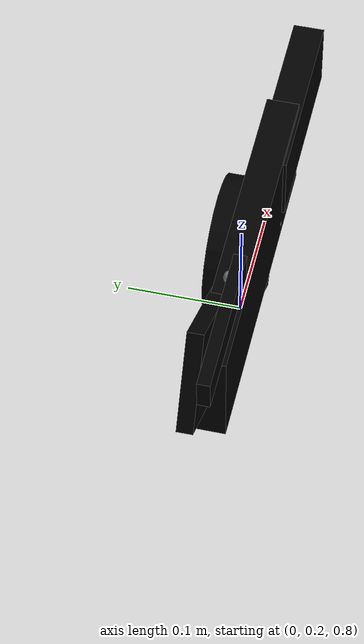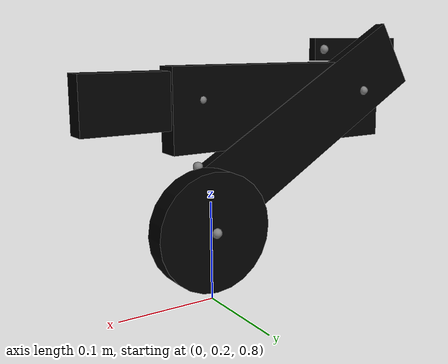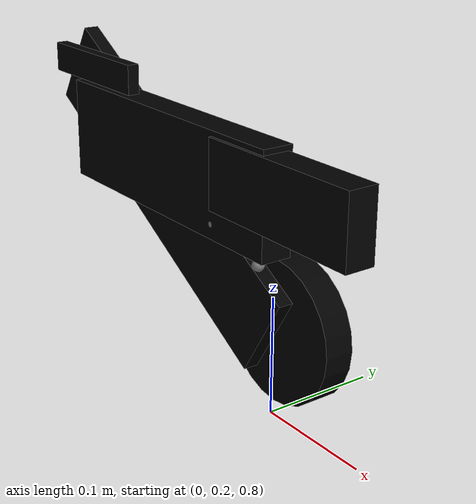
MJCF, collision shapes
<mujoco model="wheelbipeV14_2_sysid_left_fixed_1m">
  <default>
    <default class="robot">
      <default class="motor">
        <joint damping="0.01" armature="0.0" frictionloss="0.01" />
        <motor />
      </default>
      <default class="visual">
        <geom material="visualgeom" contype="0" conaffinity="0" group="2" />
      </default>
      <default class="collision">
        <geom material="collision_material" condim="3" contype="0" conaffinity="1" priority="1" group="1" solref="0.005 1" solimp="0.99 0.999 1e-05" friction="1 0.01 0.01" />
      </default>
    </default>
  </default>
  <compiler angle="radian" />
  <asset>
    <material name="visualgeom" rgba="0.7 0.7 0.7 1" />
    <material name="red" rgba="1 1 1 1" />
    <material name="default_material" rgba="0.7 0.7 0.7 1" />
    <material name="collision_material" rgba="0 0 0 0" />
    <mesh name="base_link.STL" file="../meshes/base_link.STL" />
    <mesh name="left_front1_link.STL" file="../meshes/left_front1_link.STL" />
    <mesh name="left_front2_link.STL" file="../meshes/left_front2_link.STL" />
    <mesh name="left_front3_link.STL" file="../meshes/left_front3_link.STL" />
    <mesh name="left_front4_link.STL" file="../meshes/left_front4_link.STL" />
    <mesh name="left_rear1_link.STL" file="../meshes/left_rear1_link.STL" />
    <mesh name="left_rear2_link.STL" file="../meshes/left_rear2_link.STL" />
    <mesh name="left_wheel_link.STL" file="../meshes/left_wheel_link.STL" />
    <mesh name="left_spring1_link.STL" file="../meshes/left_spring1_link.STL" />
    <mesh name="left_spring2_link.STL" file="../meshes/left_spring2_link.STL" />
  </asset>
  <worldbody>
    <body name="base_link" pos="0 0 1.0" quat="1 0 0 0" childclass="robot">
      <body name="left_front1_link" pos="0 0.1845 0" quat="1 0 0 0">
        <joint name="left_front1_joint" type="hinge" ref="0.0" class="motor" axis="0 1 0" damping="0.0" frictionloss="1.5" armature="0.035" />
        <site name="left_front1_joint_site" pos="0 0 0" quat="1 0 0 0" />
        <inertial pos="0.02531605 -0.01412400 0.00293202" mass="0.13665924" fullinertia="0.00005570 0.00023381 0.00022127 -0.00003357 -0.00001944 -0.00000389" />
        <geom name="left_front1_link_collision" pos="0.0470403 -0.0125 6.4e-06" quat="1 0 0 0" type="box" size="0.0755403 0.0125 0.02845995" class="collision" />
        <geom name="left_front1_link_visual" pos="0 0 0" quat="1 0 0 0" material="default_material" type="mesh" mesh="left_front1_link.STL" class="visual" />
        <body name="left_front2_link" pos="0.11265 -0.0095 0.013046" quat="1 0 0 0">
          <joint name="left_front2_joint" type="hinge" ref="0.0" class="motor" range="-1 0.1" axis="0 1 0" />
          <site name="left_front2_joint_site" pos="0 0 0" quat="1 0 0 0" />
          <inertial pos="-0.0544 -0.0044715 -0.0399756" quat="1 0 0 0" mass="0.0328941" diaginertia="2.95e-05 8.24e-05 5.34e-05" />
          <geom name="left_front2_link_visual" pos="0 0 0" quat="1 0 0 0" material="default_material" type="mesh" mesh="left_front2_link.STL" class="visual" />
          <body name="left_front3_link" pos="-0.10879 0.0065 -0.079941" quat="1 0 0 0">
            <joint name="left_front3_joint" type="hinge" ref="0.0" class="motor" range="-0.1 1" axis="0 1 0" />
            <site name="left_front3_joint_site" pos="0 0 0" quat="1 0 0 0" />
            <inertial pos="-0.0844609 -0.002949 0.0515978" quat="1 0 0 0" mass="0.044351" diaginertia="5.04e-05 0.0001643 0.0001141" />
            <geom name="left_front3_link_visual" pos="0 0 0" quat="1 0 0 0" material="default_material" type="mesh" mesh="left_front3_link.STL" class="visual" />
            <body name="left_front4_link" pos="-0.16505 -0.0065 0.11386" quat="1 0 0 0">
              <joint name="left_front4_joint" type="hinge" ref="0.0" class="motor" range="-2 0.1" axis="0 1 0" />
              <site name="left_front4_joint_site" pos="0 0 0" quat="1 0 0 0" />
              <inertial pos="-0.0483173 -0.0045295 0" quat="1 0 0 0" mass="0.0271098" diaginertia="1.3e-06 3.88e-05 3.79e-05" />
              <geom name="left_front4_link_collision" pos="-0.0483739 -0.005 0" quat="1 0 0 0" type="box" size="0.06072605 0.005 0.01242835" class="collision" />
              <geom name="left_front4_link_visual" pos="0 0 0" quat="1 0 0 0" material="default_material" type="mesh" mesh="left_front4_link.STL" class="visual" />
            </body>
          </body>
        </body>
      </body>
      <body name="left_rear1_link" pos="0 0.174 0" quat="1 0 0 0">
        <joint name="left_rear1_joint" type="hinge" ref="0.0" class="motor" limited="true" range="-3.14 1" axis="0 1 0" armature="0.035" damping="0.0" frictionloss="0.0" />
        <site name="left_rear1_joint_site" pos="0 0 0" quat="1 0 0 0" />
        <inertial pos="-0.11878103 -0.00279462 0.00086226" mass="0.38254442" fullinertia="0.00013214 0.00273881 0.00266568 0.00015056 0.00003507 -0.00000111" />
        <geom name="left_rear1_link_collision" pos="-0.0993414 0.001 -0.0097397" quat="1 0 0 0" type="box" size="0.1323414 0.013 0.0426967" class="collision" />
        <geom name="left_rear1_link_visual" pos="0 0 0" quat="1 0 0 0" material="default_material" type="mesh" mesh="left_rear1_link.STL" class="visual" />
        <body name="left_rear2_link" pos="-0.21 0.0145 0" quat="1 0 0 0">
          <joint name="left_rear2_joint" type="hinge" ref="0.0" class="motor" range="0 1.2" axis="0 1 0" />
          <site name="left_rear2_joint_site" pos="0 0 0" quat="1 0 0 0" />
          <site name="left_s2r2_rear2_site" pos="0.04758 -0.01405 -0.02292" quat="0.997796329836319 0 0.0663512182644112 0" />
          <inertial pos="0.08464616 -0.00523955 -0.04743407" mass="0.31135718" fullinertia="0.00102346 0.00354846 0.00253867 0.00002545 0.00148132 -0.00001794" />
          <geom name="left_rear2_link_collision" pos="0.088539 -0.0060013 -0.04" quat="0.6849543239 0.678498447369 0.188647262282 -0.186787691033" type="box" size="0.16 0.03913025 0.00638655" class="collision" />
          <geom name="left_rear2_link_visual" pos="0 0 0" quat="1 0 0 0" material="default_material" type="mesh" mesh="left_rear2_link.STL" class="visual" />
          <body name="left_wheel_link" pos="0.21661 0.03355 -0.12483" quat="1 0 0 0">
            <joint name="left_wheel_joint" type="hinge" ref="0.0" class="motor" axis="0 1 0" damping="0.00" frictionloss="0.023" />
            <site name="left_wheel_joint_site" pos="0 0 0" quat="1 0 0 0" />
            <inertial pos="0.00015349 -0.02021922 -0.00011469" mass="0.51208444" fullinertia="0.00038955 0.00063306 0.00038893 0.00000081 -0.00000093 -0.00000059" />
            <geom name="left_wheel_link_collision" pos="0 -0.0125 0" quat="0.70710679066 0.707106771713 0 0" type="cylinder" size="0.06 0.0125" class="collision" friction="1.0" />
            <geom name="left_wheel_link_visual" pos="0 0 0" quat="1 0 0 0" material="default_material" type="mesh" mesh="left_wheel_link.STL" class="visual" />
          </body>
        </body>
        <body name="left_spring1_link" pos="0.0023551 -0.002 -0.044938" quat="1 0 0 0">
          <joint name="left_spring1_joint" type="hinge" ref="0.0" class="motor" range="-0.5 0.1" axis="0 1 0" />
          <site name="left_spring1_joint_site" pos="0 0 0" quat="1 0 0 0" />
          <inertial pos="-0.0452477 -0.005217 0.0060453" quat="1 0 0 0" mass="0.0305218" diaginertia="7e-07 1.78e-05 1.74e-05" />
          <geom name="left_spring1_link_visual" pos="0 0 0" quat="1 0 0 0" material="default_material" type="mesh" mesh="left_spring1_link.STL" class="visual" />
          <body name="left_spring2_link" pos="-0.03295 -0.0055 0.0044022" quat="0.997795666274 0 0.0663611962244 0">
            <joint name="left_spring2_joint" type="slide" ref="0.0" class="motor" range="-0.015 0.065" axis="-1 0 0" damping="0" frictionloss="0" />
            <site name="left_spring2_joint_site" pos="0 0 0" quat="1 0 0 0" />
            <site name="left_s2r2_spring2_site" pos="-0.133 0.00795 0.0" quat="1 0 0 0" />
            <inertial pos="-0.0688384 0.0001674 0" quat="1 0 0 0" mass="0.0923989" diaginertia="2.5e-06 0.0001019 0.0001017" />
            <geom name="left_spring2_link_visual" pos="0 0 0" quat="1 0 0 0" material="default_material" type="mesh" mesh="left_spring2_link.STL" class="visual" />
          </body>
        </body>
      </body>
    </body>
  </worldbody>
  <actuator>
    <motor name="left_front1_joint_ctrl" joint="left_front1_joint" class="motor" forcelimited="true" forcerange="-54 54" />
    <motor name="left_rear1_joint_ctrl" joint="left_rear1_joint" class="motor" forcelimited="true" forcerange="-54 54" />
    <motor name="left_spring2_joint_ctrl" joint="left_spring2_joint" class="motor"/>
  </actuator>
  <equality>
    <connect body1="left_front4_link" body2="left_rear2_link" anchor="-0.0966 0 0" solref="0.002 1" solimp="0.99 0.99 0.01 0.5 2" />
    <connect body1="left_front3_link" body2="left_rear1_link" anchor="-0.11726 -0.0075 0.06689" solref="0.002 1" solimp="0.99 0.99 0.01 0.5 2" />
    <connect body1="left_spring2_link" body2="left_rear2_link" anchor="-0.133 0.00795 0" solref="0.002 1" solimp="0.99 0.99 0.01 0.5 2" />
  </equality>
  <contact>
    <exclude body1="base_link" body2="left_front1_link" />
    <exclude body1="base_link" body2="left_rear1_link" />
    <exclude body1="left_rear1_link" body2="left_rear2_link" />
    <exclude body1="left_rear2_link" body2="left_wheel_link" />
    <exclude body1="left_rear1_link" body2="left_spring1_link" />
    <exclude body1="left_spring1_link" body2="left_spring2_link" />
    <exclude body1="left_front1_link" body2="left_front2_link" />
    <exclude body1="left_front2_link" body2="left_front3_link" />
    <exclude body1="left_front3_link" body2="left_front4_link" />
    <exclude body1="left_front4_link" body2="left_rear2_link" />
    <exclude body1="left_front3_link" body2="left_rear1_link" />
    <exclude body1="left_spring2_link" body2="left_rear2_link" />
  </contact>
</mujoco>
